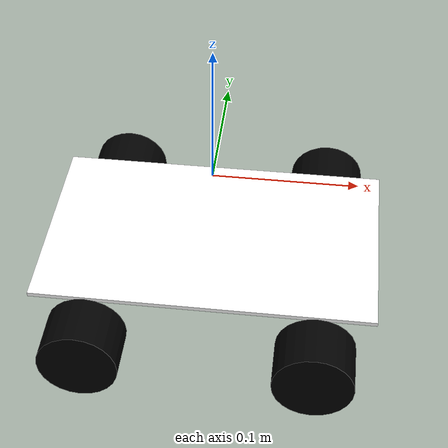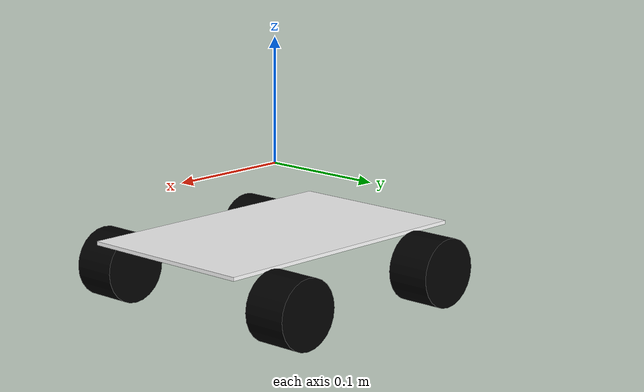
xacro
<?xml version="1.0"?>
<robot name="hello_robot" xmlns:xacro="http://www.ros.org/wiki/xacro">

  <xacro:property name="package_name" value="hello_robot" />
  <xacro:property name="robot_name" value="hello_robot" />

  <xacro:include filename="$(find ${package_name})/urdf/hello_robot.gazebo.xacro" />
  <xacro:include filename="$(find ${package_name})/urdf/include/common_macros.urdf.xacro" />

  <xacro:property name="baselen" value="0.24" />
  <xacro:property name="basewidth" value="0.15" />
  <xacro:property name="basethick" value="0.003" />
  <xacro:property name="wheeldiam" value="0.056" />
  <xacro:property name="wheelwidth" value="0.037" />
  <xacro:property name="pi" value="3.1415" />

  <link name="base_link">
    <visual>
      <geometry>
        <box size="${baselen} ${basewidth} ${basethick}" />
      </geometry>
      <material name="white"/>
    </visual>
    <collision>
      <geometry>
        <box size="${baselen} ${basewidth} ${basethick}" />
      </geometry>
    </collision>
    <xacro:base_inertia m="1.065"
    x="${baselen}" y="${basewidth}" z="${basethick}"
    o_xyz="0.0 0.0 0.0" o_rpy="0.0 0.0 0.0"
    />
  </link>

  <link name="base_footprint" />

  <!-- Joint to connect base_footprint with base_link -->
  <joint name="base_footprint_joint" type="fixed">
    <parent link="base_footprint"/>
    <child link="base_link" />
    <origin xyz="0 0 ${-wheeldiam}" rpy="0 0 0" />
  </joint>

  <xacro:wheel prefix="left" suffix="front" reflectfrontback="1" reflectside="1" m="0.087" r="${wheeldiam/2}" l="${wheelwidth}" />
  <xacro:wheel prefix="left" suffix="back" reflectfrontback="-1" reflectside="1" m="0.087" r="${wheeldiam/2}" l="${wheelwidth}" />
  <xacro:wheel prefix="right" suffix="front" reflectfrontback="1" reflectside="-1" m="0.087" r="${wheeldiam/2}" l="${wheelwidth}" />
  <xacro:wheel prefix="right" suffix="back" reflectfrontback="-1" reflectside="-1" m="0.087" r="${wheeldiam/2}" l="${wheelwidth}" />

</robot>

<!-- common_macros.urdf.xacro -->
<robot xmlns:xacro="http://www.ros.org/wiki/xacro">

    <xacro:macro name="wheel" params="prefix suffix reflectfrontback reflectside m r l">
        <link name="${prefix}_${suffix}_wheel">
        <visual>
            <origin xyz="0 0 0" rpy="${pi/2} 0 0" />
            <geometry>
            <cylinder radius="${r}" length="${l}"/>
            </geometry>
            <material name="black"/>
        </visual>
        <collision>
            <origin xyz="0 0 0" rpy="${pi/2} 0 0" />
            <geometry>
            <cylinder radius="${r}" length="${l}"/>
            </geometry>
        </collision>
        <xacro:wheel_inertia m="${m}" r="${r}" l="${l}"
        o_xyz="0.0 0.0 0.0" o_rpy="0.0 0.0 0.0"
        />
        </link>
        <joint name="${prefix}_${suffix}_wheel_joint" type="continuous">
        <axis xyz="0 1 0" rpy="0 0 0" />
        <parent link="base_link"/>
        <child link="${prefix}_${suffix}_wheel"/>
        <origin xyz="${baselen*reflectfrontback/3} ${((basewidth/2)+l/2)*reflectside} ${-r}" rpy="0 0 0"/>
        </joint>

            <!-- This block provides the simulator (Gazebo) with information on a few additional
        physical properties. See http://gazebosim.org/tutorials/?tut=ros_urdf for more-->
        <gazebo reference="${prefix}_${suffix}_wheel">
        <mu1 value="200.0"/>
        <mu2 value="100.0"/>
        <kp value="10000000.0" />
        <kd value="1.0" />
        <material>Gazebo/Grey</material>
        </gazebo>

        <!-- This block connects the wheel joint to an actuator (motor), which informs both
        simulation and visualization of the robot -->
        <transmission name="${prefix}_${suffix}_wheel_trans">
        <type>transmission_interface/SimpleTransmission</type>
        <actuator name="${prefix}_${suffix}_wheel_motor">
            <mechanicalReduction>1</mechanicalReduction>
        </actuator>
        <joint name="${prefix}_${suffix}_wheel_joint">
            <hardwareInterface>VelocityJointInterface</hardwareInterface>
        </joint>
        </transmission>
    </xacro:macro>

  <!-- ======================= Intertial macros ===============================-->
  <xacro:macro name="wheel_inertia" params="m r l o_xyz:='0.0 0.0 0.0' o_rpy:='0.0 0.0 0.0'">
    <inertial>
      <mass value="${m}"/>
      <inertia ixx="${m*(3*r*r+l*l)/12}" ixy = "0" ixz = "0"
               iyy="${m*(3*r*r+l*l)/12}" iyz = "0" izz="${m*r*r/2}"/>
      <origin xyz="${o_xyz}" rpy="${o_rpy}" />
    </inertial>
  </xacro:macro>

<xacro:macro name="base_inertia" params="m x y z o_xyz:='0.0 0.0 0.0' o_rpy:='0.0 0.0 0.0'">
    <inertial>
      <mass value="${m}"/>
      <inertia ixx="${m / 12.0 * (y*y + z*z)}" ixy="0.0" ixz="0.0"
               iyy="${m / 12.0 * (x*x + z*z)}" iyz="0.0"
               izz="${m / 12.0 * (x*x + y*y)}"/>
      <origin xyz="${o_xyz}" rpy="${o_rpy}" />
    </inertial>
  </xacro:macro>

<!-- ===================== Material ============================================
  RVIZ material RGBA definition.
-->

  <material name="blue">
    <color rgba="0 0 0.8 1"/>
  </material>
  <material name="black">
    <color rgba="0 0 0 1"/>
  </material>
  <material name="white">
    <color rgba="1 1 1 1"/>
  </material>
  <material name="red">
    <color rgba="0.8 0.0 0.0 1.0"/>
  </material>
  <material name="silver">
    <color rgba="0.79 0.82 0.93 1"/>
  </material>
  <material name="dark_grey">
    <color rgba="0.3 0.3 0.3 1"/>
  </material>

</robot>
